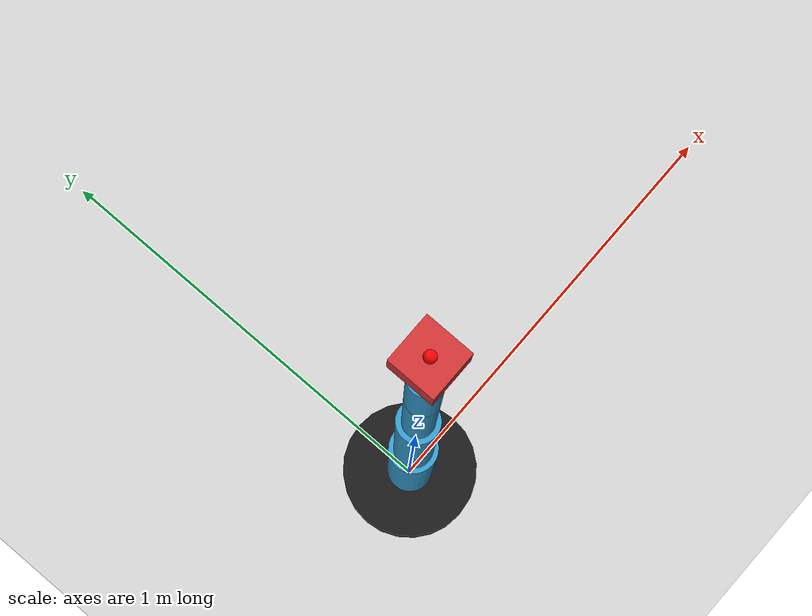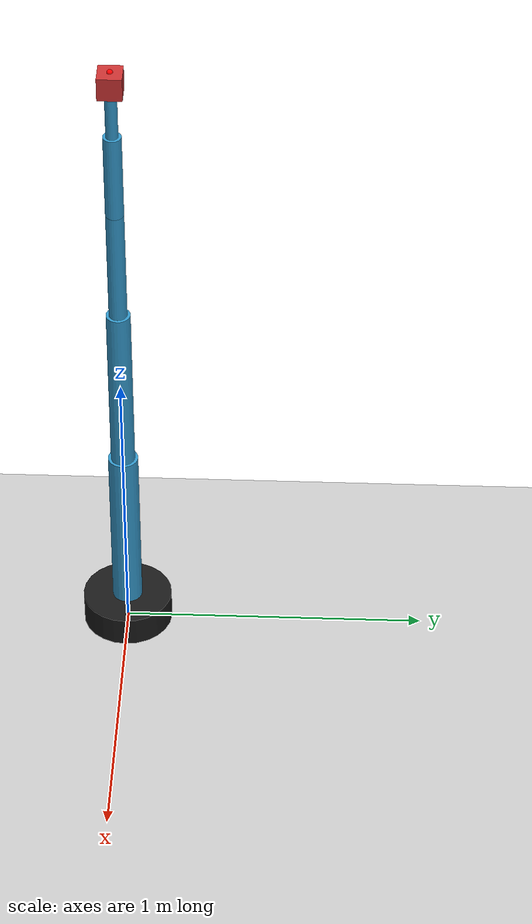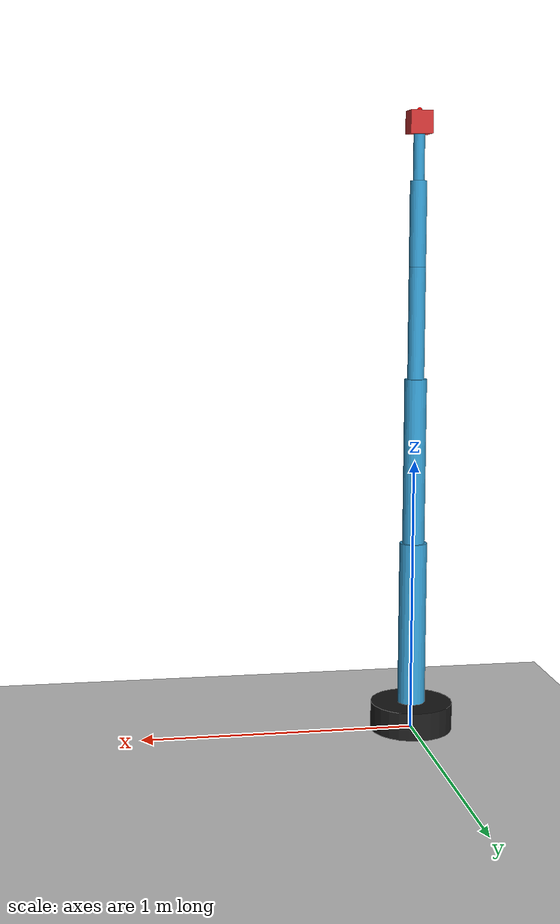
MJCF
<mujoco model="6-DOF Mechanical Arm">
  <!-- 编译器配置：物理参数、仿真步长 -->
  <compiler angle="radian" inertiafromgeom="true"/>
  <option timestep="0.001" gravity="0 0 -9.81"/>

  <!-- 视觉配置：背景、光照 -->
  <visual>
    <global azimuth="135" elevation="-30" perspective="0.01"/>
    <light diffuse="0.8 0.8 0.8" ambient="0.2 0.2 0.2" dir="-0.5 -0.5 -1"/>
  </visual>

  <!-- 资产：材质、纹理（简化版） -->
  <asset>
    <material name="arm_mat" rgba="0.2 0.6 0.8 1" specular="0.2"/>
    <material name="base_mat" rgba="0.1 0.1 0.1 1" specular="0.1"/>
    <material name="ee_mat" rgba="0.8 0.2 0.2 1" specular="0.3"/>
  </asset>

  <!-- 世界体：基础坐标系 -->
  <worldbody>
    <!-- 地面：方便观察 -->
    <geom name="floor" type="plane" size="5 5 0.1" pos="0 0 0" rgba="0.8 0.8 0.8 1"/>

    <!-- 机械臂基座 -->
    <body name="base" pos="0 0 0">
      <geom name="base_geom" type="cylinder" size="0.15 0.1" pos="0 0 0" material="base_mat"/>
      <joint name="joint1" type="hinge" axis="0 0 1" pos="0 0 0.1" range="-3.14 3.14" damping="0.1"/>

      <!-- 连杆1（肩部） -->
      <body name="link1" pos="0 0 0.1">
        <geom name="link1_geom" type="cylinder" size="0.05 0.3" pos="0 0 0.3" axis="0 1 0" material="arm_mat"/>
        <joint name="joint2" type="hinge" axis="0 1 0" pos="0 0 0.6" range="-1.57 1.57" damping="0.1"/>

        <!-- 连杆2（肘部） -->
        <body name="link2" pos="0 0 0.6">
          <geom name="link2_geom" type="cylinder" size="0.04 0.3" pos="0 0 0.3" axis="0 1 0" material="arm_mat"/>
          <joint name="joint3" type="hinge" axis="0 1 0" pos="0 0 0.6" range="-1.57 1.57" damping="0.1"/>

          <!-- 连杆3（腕部1） -->
          <body name="link3" pos="0 0 0.6">
            <geom name="link3_geom" type="cylinder" size="0.03 0.2" pos="0 0 0.2" axis="0 1 0" material="arm_mat"/>
            <joint name="joint4" type="hinge" axis="0 0 1" pos="0 0 0.4" range="-3.14 3.14" damping="0.1"/>

            <!-- 连杆4（腕部2） -->
            <body name="link4" pos="0 0 0.4">
              <geom name="link4_geom" type="cylinder" size="0.03 0.15" pos="0 0 0.15" axis="0 1 0" material="arm_mat"/>
              <joint name="joint5" type="hinge" axis="0 1 0" pos="0 0 0.3" range="-1.57 1.57" damping="0.1"/>

              <!-- 连杆5（腕部3） -->
              <body name="link5" pos="0 0 0.3">
                <geom name="link5_geom" type="cylinder" size="0.02 0.1" pos="0 0 0.1" axis="0 1 0" material="arm_mat"/>
                <joint name="joint6" type="hinge" axis="0 0 1" pos="0 0 0.2" range="-3.14 3.14" damping="0.1"/>

                <!-- 末端执行器（夹爪简化版） -->
                <body name="end_effector" pos="0 0 0.2">
                  <geom name="ee_geom" type="box" size="0.04 0.04 0.04" pos="0 0 0" material="ee_mat"/>
                  <!-- 末端执行器位点：方便抓取/坐标计算 -->
                  <site name="ee_site" pos="0 0 0.04" size="0.01" rgba="1 0 0 1"/>
                </body>
              </body>
            </body>
          </body>
        </body>
      </body>
    </body>
  </worldbody>

  <!-- 控制配置：关节力矩控制 -->
  <actuator>
    <motor name="motor1" joint="joint1" ctrlrange="-5 5" gear="100"/>
    <motor name="motor2" joint="joint2" ctrlrange="-5 5" gear="100"/>
    <motor name="motor3" joint="joint3" ctrlrange="-5 5" gear="100"/>
    <motor name="motor4" joint="joint4" ctrlrange="-5 5" gear="100"/>
    <motor name="motor5" joint="joint5" ctrlrange="-5 5" gear="100"/>
    <motor name="motor6" joint="joint6" ctrlrange="-5 5" gear="100"/>
  </actuator>

  <!-- 传感器配置：关节角度、末端执行器力/位置 -->
  <sensor>
    <!-- 6个关节的角度传感器 -->
    <jointpos name="joint1_pos" joint="joint1"/>
    <jointpos name="joint2_pos" joint="joint2"/>
    <jointpos name="joint3_pos" joint="joint3"/>
    <jointpos name="joint4_pos" joint="joint4"/>
    <jointpos name="joint5_pos" joint="joint5"/>
    <jointpos name="joint6_pos" joint="joint6"/>

    <!-- 末端执行器力传感器 -->
    <force name="ee_force" site="ee_site"/>
    <!-- 末端执行器位置传感器 -->
    <framepos name="ee_pos" site="ee_site"/>
  </sensor>
</mujoco>
